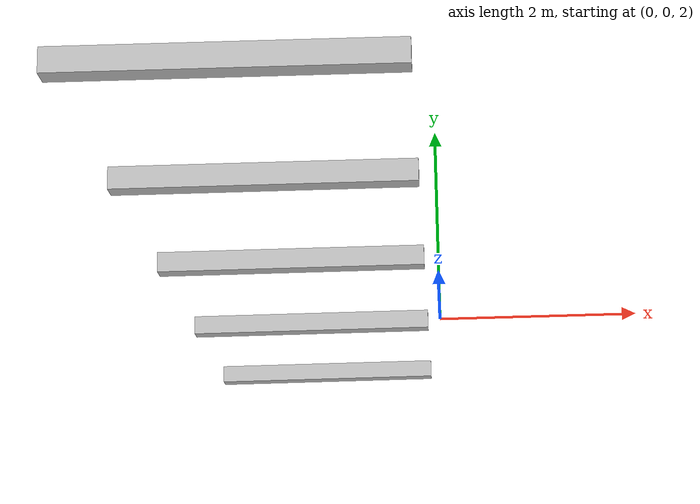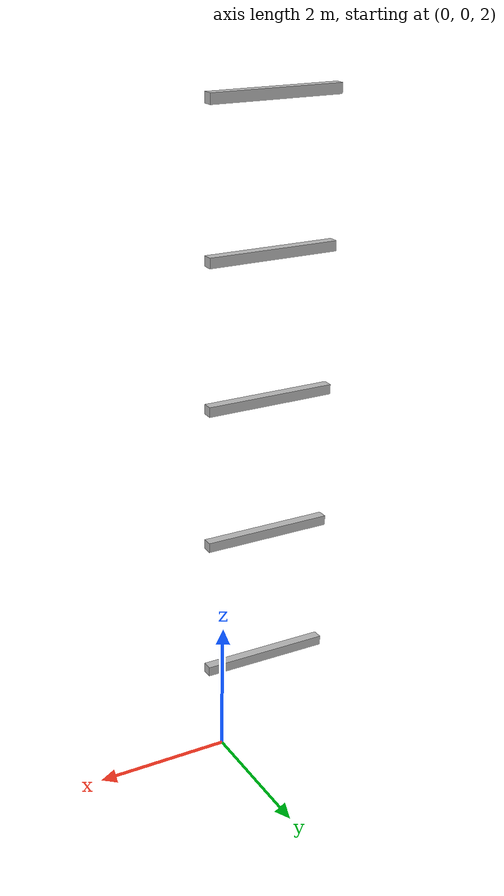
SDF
<sdf version="1.7">
 <world name="default">
  <model name="orthogonal_747_2.000.15_TS">
   <static>1</static>
   <link name="x_link_2_2_2">
    <inertial>
     <mass>1</mass>
     <inertia>
      <ixx>0.166667</ixx>
      <ixy>0</ixy>
      <ixz>0</ixz>
      <iyy>0.166667</iyy>
      <iyz>0</iyz>
      <izz>0.166667</izz>
     </inertia>
    </inertial>
    <pose>5.375 4.3 5.375 0 -0 0</pose>
    <visual name="visual_0">
     <laser_retro>2094</laser_retro>
     <geometry><box><size>2 1e-06 0.15</size></box></geometry>
     <material>
      <script><name>Gazebo/Grey</name><uri>file://media/materials/scripts/gazebo.material</uri></script>
      <shader type="pixel"><normal_map>__default__</normal_map></shader>
      <ambient>0.678 0.498 0.659 1</ambient>
      <diffuse>0.7 0.7 0.7 1</diffuse>
      <specular>0.01 0.01 0.01 1</specular>
      <emissive>0 0 0 1</emissive>
     </material>
     <pose>0 -0.075 0 0 -0 0</pose>
     <transparency>1</transparency>
    </visual>
    <visual name="visual_1">
     <laser_retro>2095</laser_retro>
     <geometry><box><size>2 1e-06 0.15</size></box></geometry>
     <material>
      <script><name>Gazebo/Grey</name><uri>file://media/materials/scripts/gazebo.material</uri></script>
      <shader type="pixel"><normal_map>__default__</normal_map></shader>
      <ambient>0.447 0.624 0.812 1</ambient>
      <diffuse>0.7 0.7 0.7 1</diffuse>
      <specular>0.01 0.01 0.01 1</specular>
      <emissive>0 0 0 1</emissive>
     </material>
     <pose>0 0.075 0 0 -0 0</pose>
     <transparency>1</transparency>
    </visual>
    <visual name="visual_2">
     <laser_retro>2096</laser_retro>
     <geometry><box><size>2 0.15 1e-06</size></box></geometry>
     <material>
      <script><name>Gazebo/Grey</name><uri>file://media/materials/scripts/gazebo.material</uri></script>
      <shader type="pixel"><normal_map>__default__</normal_map></shader>
      <ambient>0.988 0.686 0.243 1</ambient>
      <diffuse>0.7 0.7 0.7 1</diffuse>
      <specular>0.01 0.01 0.01 1</specular>
      <emissive>0 0 0 1</emissive>
     </material>
     <pose>0 0 -0.075 0 -0 0</pose>
     <transparency>1</transparency>
    </visual>
    <visual name="visual_3">
     <laser_retro>2097</laser_retro>
     <geometry><box><size>1e-06 0.15 0.15</size></box></geometry>
     <material>
      <script><name>Gazebo/Grey</name><uri>file://media/materials/scripts/gazebo.material</uri></script>
      <shader type="pixel"><normal_map>__default__</normal_map></shader>
      <ambient>0.988 0.914 0.31 1</ambient>
      <diffuse>0.7 0.7 0.7 1</diffuse>
      <specular>0.01 0.01 0.01 1</specular>
      <emissive>0 0 0 1</emissive>
     </material>
     <pose>1 0 0 0 -0 0</pose>
     <transparency>1</transparency>
    </visual>
    <visual name="visual_4">
     <laser_retro>2098</laser_retro>
     <geometry><box><size>2 0.15 1e-06</size></box></geometry>
     <material>
      <script><name>Gazebo/Grey</name><uri>file://media/materials/scripts/gazebo.material</uri></script>
      <shader type="pixel"><normal_map>__default__</normal_map></shader>
      <ambient>0.937 0.161 0.161 1</ambient>
      <diffuse>0.7 0.7 0.7 1</diffuse>
      <specular>0.01 0.01 0.01 1</specular>
      <emissive>0 0 0 1</emissive>
     </material>
     <pose>0 0 0.075 0 -0 0</pose>
     <transparency>1</transparency>
    </visual>
    <visual name="visual_5">
     <laser_retro>2099</laser_retro>
     <geometry><box><size>1e-06 0.15 0.15</size></box></geometry>
     <material>
      <script><name>Gazebo/Grey</name><uri>file://media/materials/scripts/gazebo.material</uri></script>
      <shader type="pixel"><normal_map>__default__</normal_map></shader>
      <ambient>0.541 0.886 0.204 1</ambient>
      <diffuse>0.7 0.7 0.7 1</diffuse>
      <specular>0.01 0.01 0.01 1</specular>
      <emissive>0 0 0 1</emissive>
     </material>
     <pose>-1 0 0 0 -0 0</pose>
     <transparency>1</transparency>
    </visual>
    <visual name="visual_texture">
     <geometry><box><size>1.9998 0.149985 0.149985</size></box></geometry>
     <material>
      <script>
       <uri>model://BASE_MODELS/simple_block_v2_textured/materials/scripts</uri>
       <uri>model://BASE_MODELS/simple_block_v2_textured/materials/textures</uri>
       <name>metal</name>
      </script>
     </material>
     <laser_retro>2100</laser_retro>
    </visual>
    <collision name="collision">
     <geometry><box><size>2 0.15 0.15</size></box></geometry>
     <surface>
      <friction>
       <ode><mu>1</mu><mu2>1</mu2><fdir1>0 0 0</fdir1><slip1>0</slip1><slip2>0</slip2></ode>
       <torsional>
        <coefficient>1</coefficient>
        <patch_radius>0</patch_radius>
        <surface_radius>0</surface_radius>
        <use_patch_radius>1</use_patch_radius>
        <ode><slip>0</slip></ode>
       </torsional>
      </friction>
      <bounce><restitution_coefficient>0</restitution_coefficient><threshold>1e+06</threshold></bounce>
      <contact>
       <collide_without_contact>0</collide_without_contact>
       <collide_without_contact_bitmask>1</collide_without_contact_bitmask>
       <collide_bitmask>1</collide_bitmask>
       <ode>
        <soft_cfm>0</soft_cfm>
        <soft_erp>0.2</soft_erp>
        <kp>1e+13</kp>
        <kd>1</kd>
        <max_vel>0.01</max_vel>
        <min_depth>0</min_depth>
       </ode>
       <bullet>
        <split_impulse>1</split_impulse>
        <split_impulse_penetration_threshold>-0.01</split_impulse_penetration_threshold>
        <soft_cfm>0</soft_cfm>
        <soft_erp>0.2</soft_erp>
        <kp>1e+13</kp>
        <kd>1</kd>
       </bullet>
      </contact>
     </surface>
    </collision>
   </link>
   <link name="x_link_3_2_2">
    <inertial>
     <mass>1</mass>
     <inertia>
      <ixx>0.166667</ixx>
      <ixy>0</ixy>
      <ixz>0</ixz>
      <iyy>0.166667</iyy>
      <iyz>0</iyz>
      <izz>0.166667</izz>
     </inertia>
    </inertial>
    <pose>5.375 4.3 7.525 0 -0 0</pose>
    <visual name="visual_0">
     <laser_retro>2997</laser_retro>
     <geometry><box><size>2 1e-06 0.15</size></box></geometry>
     <material>
      <script><name>Gazebo/Grey</name><uri>file://media/materials/scripts/gazebo.material</uri></script>
      <shader type="pixel"><normal_map>__default__</normal_map></shader>
      <ambient>0.678 0.498 0.659 1</ambient>
      <diffuse>0.7 0.7 0.7 1</diffuse>
      <specular>0.01 0.01 0.01 1</specular>
      <emissive>0 0 0 1</emissive>
     </material>
     <pose>0 -0.075 0 0 -0 0</pose>
     <transparency>1</transparency>
    </visual>
    <visual name="visual_1">
     <laser_retro>2998</laser_retro>
     <geometry><box><size>2 1e-06 0.15</size></box></geometry>
     <material>
      <script><name>Gazebo/Grey</name><uri>file://media/materials/scripts/gazebo.material</uri></script>
      <shader type="pixel"><normal_map>__default__</normal_map></shader>
      <ambient>0.447 0.624 0.812 1</ambient>
      <diffuse>0.7 0.7 0.7 1</diffuse>
      <specular>0.01 0.01 0.01 1</specular>
      <emissive>0 0 0 1</emissive>
     </material>
     <pose>0 0.075 0 0 -0 0</pose>
     <transparency>1</transparency>
    </visual>
    <visual name="visual_2">
     <laser_retro>2999</laser_retro>
     <geometry><box><size>2 0.15 1e-06</size></box></geometry>
     <material>
      <script><name>Gazebo/Grey</name><uri>file://media/materials/scripts/gazebo.material</uri></script>
      <shader type="pixel"><normal_map>__default__</normal_map></shader>
      <ambient>0.988 0.686 0.243 1</ambient>
      <diffuse>0.7 0.7 0.7 1</diffuse>
      <specular>0.01 0.01 0.01 1</specular>
      <emissive>0 0 0 1</emissive>
     </material>
     <pose>0 0 -0.075 0 -0 0</pose>
     <transparency>1</transparency>
    </visual>
    <visual name="visual_3">
     <laser_retro>3000</laser_retro>
     <geometry><box><size>1e-06 0.15 0.15</size></box></geometry>
     <material>
      <script><name>Gazebo/Grey</name><uri>file://media/materials/scripts/gazebo.material</uri></script>
      <shader type="pixel"><normal_map>__default__</normal_map></shader>
      <ambient>0.988 0.914 0.31 1</ambient>
      <diffuse>0.7 0.7 0.7 1</diffuse>
      <specular>0.01 0.01 0.01 1</specular>
      <emissive>0 0 0 1</emissive>
     </material>
     <pose>1 0 0 0 -0 0</pose>
     <transparency>1</transparency>
    </visual>
    <visual name="visual_4">
     <laser_retro>3001</laser_retro>
     <geometry><box><size>2 0.15 1e-06</size></box></geometry>
     <material>
      <script><name>Gazebo/Grey</name><uri>file://media/materials/scripts/gazebo.material</uri></script>
      <shader type="pixel"><normal_map>__default__</normal_map></shader>
      <ambient>0.937 0.161 0.161 1</ambient>
      <diffuse>0.7 0.7 0.7 1</diffuse>
      <specular>0.01 0.01 0.01 1</specular>
      <emissive>0 0 0 1</emissive>
     </material>
     <pose>0 0 0.075 0 -0 0</pose>
     <transparency>1</transparency>
    </visual>
    <visual name="visual_5">
     <laser_retro>3002</laser_retro>
     <geometry><box><size>1e-06 0.15 0.15</size></box></geometry>
     <material>
      <script><name>Gazebo/Grey</name><uri>file://media/materials/scripts/gazebo.material</uri></script>
      <shader type="pixel"><normal_map>__default__</normal_map></shader>
      <ambient>0.541 0.886 0.204 1</ambient>
      <diffuse>0.7 0.7 0.7 1</diffuse>
      <specular>0.01 0.01 0.01 1</specular>
      <emissive>0 0 0 1</emissive>
     </material>
     <pose>-1 0 0 0 -0 0</pose>
     <transparency>1</transparency>
    </visual>
    <visual name="visual_texture">
     <geometry><box><size>1.9998 0.149985 0.149985</size></box></geometry>
     <material>
      <script>
       <uri>model://BASE_MODELS/simple_block_v2_textured/materials/scripts</uri>
       <uri>model://BASE_MODELS/simple_block_v2_textured/materials/textures</uri>
       <name>metal</name>
      </script>
     </material>
     <laser_retro>3003</laser_retro>
    </visual>
    <collision name="collision">
     <geometry><box><size>2 0.15 0.15</size></box></geometry>
     <surface>
      <friction>
       <ode><mu>1</mu><mu2>1</mu2><fdir1>0 0 0</fdir1><slip1>0</slip1><slip2>0</slip2></ode>
       <torsional>
        <coefficient>1</coefficient>
        <patch_radius>0</patch_radius>
        <surface_radius>0</surface_radius>
        <use_patch_radius>1</use_patch_radius>
        <ode><slip>0</slip></ode>
       </torsional>
      </friction>
      <bounce><restitution_coefficient>0</restitution_coefficient><threshold>1e+06</threshold></bounce>
      <contact>
       <collide_without_contact>0</collide_without_contact>
       <collide_without_contact_bitmask>1</collide_without_contact_bitmask>
       <collide_bitmask>1</collide_bitmask>
       <ode>
        <soft_cfm>0</soft_cfm>
        <soft_erp>0.2</soft_erp>
        <kp>1e+13</kp>
        <kd>1</kd>
        <max_vel>0.01</max_vel>
        <min_depth>0</min_depth>
       </ode>
       <bullet>
        <split_impulse>1</split_impulse>
        <split_impulse_penetration_threshold>-0.01</split_impulse_penetration_threshold>
        <soft_cfm>0</soft_cfm>
        <soft_erp>0.2</soft_erp>
        <kp>1e+13</kp>
        <kd>1</kd>
       </bullet>
      </contact>
     </surface>
    </collision>
   </link>
   <link name="x_link_4_2_2">
    <inertial>
     <mass>1</mass>
     <inertia>
      <ixx>0.166667</ixx>
      <ixy>0</ixy>
      <ixz>0</ixz>
      <iyy>0.166667</iyy>
      <iyz>0</iyz>
      <izz>0.166667</izz>
     </inertia>
    </inertial>
    <pose>5.375 4.3 9.675 0 -0 0</pose>
    <visual name="visual_0">
     <laser_retro>3900</laser_retro>
     <geometry><box><size>2 1e-06 0.15</size></box></geometry>
     <material>
      <script><name>Gazebo/Grey</name><uri>file://media/materials/scripts/gazebo.material</uri></script>
      <shader type="pixel"><normal_map>__default__</normal_map></shader>
      <ambient>0.678 0.498 0.659 1</ambient>
      <diffuse>0.7 0.7 0.7 1</diffuse>
      <specular>0.01 0.01 0.01 1</specular>
      <emissive>0 0 0 1</emissive>
     </material>
     <pose>0 -0.075 0 0 -0 0</pose>
     <transparency>1</transparency>
    </visual>
    <visual name="visual_1">
     <laser_retro>3901</laser_retro>
     <geometry><box><size>2 1e-06 0.15</size></box></geometry>
     <material>
      <script><name>Gazebo/Grey</name><uri>file://media/materials/scripts/gazebo.material</uri></script>
      <shader type="pixel"><normal_map>__default__</normal_map></shader>
      <ambient>0.447 0.624 0.812 1</ambient>
      <diffuse>0.7 0.7 0.7 1</diffuse>
      <specular>0.01 0.01 0.01 1</specular>
      <emissive>0 0 0 1</emissive>
     </material>
     <pose>0 0.075 0 0 -0 0</pose>
     <transparency>1</transparency>
    </visual>
    <visual name="visual_2">
     <laser_retro>3902</laser_retro>
     <geometry><box><size>2 0.15 1e-06</size></box></geometry>
     <material>
      <script><name>Gazebo/Grey</name><uri>file://media/materials/scripts/gazebo.material</uri></script>
      <shader type="pixel"><normal_map>__default__</normal_map></shader>
      <ambient>0.988 0.686 0.243 1</ambient>
      <diffuse>0.7 0.7 0.7 1</diffuse>
      <specular>0.01 0.01 0.01 1</specular>
      <emissive>0 0 0 1</emissive>
     </material>
     <pose>0 0 -0.075 0 -0 0</pose>
     <transparency>1</transparency>
    </visual>
    <visual name="visual_3">
     <laser_retro>3903</laser_retro>
     <geometry><box><size>1e-06 0.15 0.15</size></box></geometry>
     <material>
      <script><name>Gazebo/Grey</name><uri>file://media/materials/scripts/gazebo.material</uri></script>
      <shader type="pixel"><normal_map>__default__</normal_map></shader>
      <ambient>0.988 0.914 0.31 1</ambient>
      <diffuse>0.7 0.7 0.7 1</diffuse>
      <specular>0.01 0.01 0.01 1</specular>
      <emissive>0 0 0 1</emissive>
     </material>
     <pose>1 0 0 0 -0 0</pose>
     <transparency>1</transparency>
    </visual>
    <visual name="visual_4">
     <laser_retro>3904</laser_retro>
     <geometry><box><size>2 0.15 1e-06</size></box></geometry>
     <material>
      <script><name>Gazebo/Grey</name><uri>file://media/materials/scripts/gazebo.material</uri></script>
      <shader type="pixel"><normal_map>__default__</normal_map></shader>
      <ambient>0.937 0.161 0.161 1</ambient>
      <diffuse>0.7 0.7 0.7 1</diffuse>
      <specular>0.01 0.01 0.01 1</specular>
      <emissive>0 0 0 1</emissive>
     </material>
     <pose>0 0 0.075 0 -0 0</pose>
     <transparency>1</transparency>
    </visual>
    <visual name="visual_5">
     <laser_retro>3905</laser_retro>
     <geometry><box><size>1e-06 0.15 0.15</size></box></geometry>
     <material>
      <script><name>Gazebo/Grey</name><uri>file://media/materials/scripts/gazebo.material</uri></script>
      <shader type="pixel"><normal_map>__default__</normal_map></shader>
      <ambient>0.541 0.886 0.204 1</ambient>
      <diffuse>0.7 0.7 0.7 1</diffuse>
      <specular>0.01 0.01 0.01 1</specular>
      <emissive>0 0 0 1</emissive>
     </material>
     <pose>-1 0 0 0 -0 0</pose>
     <transparency>1</transparency>
    </visual>
    <visual name="visual_texture">
     <geometry><box><size>1.9998 0.149985 0.149985</size></box></geometry>
     <material>
      <script>
       <uri>model://BASE_MODELS/simple_block_v2_textured/materials/scripts</uri>
       <uri>model://BASE_MODELS/simple_block_v2_textured/materials/textures</uri>
       <name>metal</name>
      </script>
     </material>
     <laser_retro>3906</laser_retro>
    </visual>
    <collision name="collision">
     <geometry><box><size>2 0.15 0.15</size></box></geometry>
     <surface>
      <friction>
       <ode><mu>1</mu><mu2>1</mu2><fdir1>0 0 0</fdir1><slip1>0</slip1><slip2>0</slip2></ode>
       <torsional>
        <coefficient>1</coefficient>
        <patch_radius>0</patch_radius>
        <surface_radius>0</surface_radius>
        <use_patch_radius>1</use_patch_radius>
        <ode><slip>0</slip></ode>
       </torsional>
      </friction>
      <bounce><restitution_coefficient>0</restitution_coefficient><threshold>1e+06</threshold></bounce>
      <contact>
       <collide_without_contact>0</collide_without_contact>
       <collide_without_contact_bitmask>1</collide_without_contact_bitmask>
       <collide_bitmask>1</collide_bitmask>
       <ode>
        <soft_cfm>0</soft_cfm>
        <soft_erp>0.2</soft_erp>
        <kp>1e+13</kp>
        <kd>1</kd>
        <max_vel>0.01</max_vel>
        <min_depth>0</min_depth>
       </ode>
       <bullet>
        <split_impulse>1</split_impulse>
        <split_impulse_penetration_threshold>-0.01</split_impulse_penetration_threshold>
        <soft_cfm>0</soft_cfm>
        <soft_erp>0.2</soft_erp>
        <kp>1e+13</kp>
        <kd>1</kd>
       </bullet>
      </contact>
     </surface>
    </collision>
   </link>
   <link name="x_link_5_2_2">
    <inertial>
     <mass>1</mass>
     <inertia>
      <ixx>0.166667</ixx>
      <ixy>0</ixy>
      <ixz>0</ixz>
      <iyy>0.166667</iyy>
      <iyz>0</iyz>
      <izz>0.166667</izz>
     </inertia>
    </inertial>
    <pose>5.375 4.3 11.825 0 -0 0</pose>
    <visual name="visual_0">
     <laser_retro>4803</laser_retro>
     <geometry><box><size>2 1e-06 0.15</size></box></geometry>
     <material>
      <script><name>Gazebo/Grey</name><uri>file://media/materials/scripts/gazebo.material</uri></script>
      <shader type="pixel"><normal_map>__default__</normal_map></shader>
      <ambient>0.678 0.498 0.659 1</ambient>
      <diffuse>0.7 0.7 0.7 1</diffuse>
      <specular>0.01 0.01 0.01 1</specular>
      <emissive>0 0 0 1</emissive>
     </material>
     <pose>0 -0.075 0 0 -0 0</pose>
     <transparency>1</transparency>
    </visual>
    <visual name="visual_1">
     <laser_retro>4804</laser_retro>
     <geometry><box><size>2 1e-06 0.15</size></box></geometry>
     <material>
      <script><name>Gazebo/Grey</name><uri>file://media/materials/scripts/gazebo.material</uri></script>
      <shader type="pixel"><normal_map>__default__</normal_map></shader>
      <ambient>0.447 0.624 0.812 1</ambient>
      <diffuse>0.7 0.7 0.7 1</diffuse>
      <specular>0.01 0.01 0.01 1</specular>
      <emissive>0 0 0 1</emissive>
     </material>
     <pose>0 0.075 0 0 -0 0</pose>
     <transparency>1</transparency>
    </visual>
    <visual name="visual_2">
     <laser_retro>4805</laser_retro>
     <geometry><box><size>2 0.15 1e-06</size></box></geometry>
     <material>
      <script><name>Gazebo/Grey</name><uri>file://media/materials/scripts/gazebo.material</uri></script>
      <shader type="pixel"><normal_map>__default__</normal_map></shader>
      <ambient>0.988 0.686 0.243 1</ambient>
      <diffuse>0.7 0.7 0.7 1</diffuse>
      <specular>0.01 0.01 0.01 1</specular>
      <emissive>0 0 0 1</emissive>
     </material>
     <pose>0 0 -0.075 0 -0 0</pose>
     <transparency>1</transparency>
    </visual>
    <visual name="visual_3">
     <laser_retro>4806</laser_retro>
     <geometry><box><size>1e-06 0.15 0.15</size></box></geometry>
     <material>
      <script><name>Gazebo/Grey</name><uri>file://media/materials/scripts/gazebo.material</uri></script>
      <shader type="pixel"><normal_map>__default__</normal_map></shader>
      <ambient>0.988 0.914 0.31 1</ambient>
      <diffuse>0.7 0.7 0.7 1</diffuse>
      <specular>0.01 0.01 0.01 1</specular>
      <emissive>0 0 0 1</emissive>
     </material>
     <pose>1 0 0 0 -0 0</pose>
     <transparency>1</transparency>
    </visual>
    <visual name="visual_4">
     <laser_retro>4807</laser_retro>
     <geometry><box><size>2 0.15 1e-06</size></box></geometry>
     <material>
      <script><name>Gazebo/Grey</name><uri>file://media/materials/scripts/gazebo.material</uri></script>
      <shader type="pixel"><normal_map>__default__</normal_map></shader>
      <ambient>0.937 0.161 0.161 1</ambient>
      <diffuse>0.7 0.7 0.7 1</diffuse>
      <specular>0.01 0.01 0.01 1</specular>
      <emissive>0 0 0 1</emissive>
     </material>
     <pose>0 0 0.075 0 -0 0</pose>
     <transparency>1</transparency>
    </visual>
    <visual name="visual_5">
     <laser_retro>4808</laser_retro>
     <geometry><box><size>1e-06 0.15 0.15</size></box></geometry>
     <material>
      <script><name>Gazebo/Grey</name><uri>file://media/materials/scripts/gazebo.material</uri></script>
      <shader type="pixel"><normal_map>__default__</normal_map></shader>
      <ambient>0.541 0.886 0.204 1</ambient>
      <diffuse>0.7 0.7 0.7 1</diffuse>
      <specular>0.01 0.01 0.01 1</specular>
      <emissive>0 0 0 1</emissive>
     </material>
     <pose>-1 0 0 0 -0 0</pose>
     <transparency>1</transparency>
    </visual>
    <visual name="visual_texture">
     <geometry><box><size>1.9998 0.149985 0.149985</size></box></geometry>
     <material>
      <script>
       <uri>model://BASE_MODELS/simple_block_v2_textured/materials/scripts</uri>
       <uri>model://BASE_MODELS/simple_block_v2_textured/materials/textures</uri>
       <name>metal</name>
      </script>
     </material>
     <laser_retro>4809</laser_retro>
    </visual>
    <collision name="collision">
     <geometry><box><size>2 0.15 0.15</size></box></geometry>
     <surface>
      <friction>
       <ode><mu>1</mu><mu2>1</mu2><fdir1>0 0 0</fdir1><slip1>0</slip1><slip2>0</slip2></ode>
       <torsional>
        <coefficient>1</coefficient>
        <patch_radius>0</patch_radius>
        <surface_radius>0</surface_radius>
        <use_patch_radius>1</use_patch_radius>
        <ode><slip>0</slip></ode>
       </torsional>
      </friction>
      <bounce><restitution_coefficient>0</restitution_coefficient><threshold>1e+06</threshold></bounce>
      <contact>
       <collide_without_contact>0</collide_without_contact>
       <collide_without_contact_bitmask>1</collide_without_contact_bitmask>
       <collide_bitmask>1</collide_bitmask>
       <ode>
        <soft_cfm>0</soft_cfm>
        <soft_erp>0.2</soft_erp>
        <kp>1e+13</kp>
        <kd>1</kd>
        <max_vel>0.01</max_vel>
        <min_depth>0</min_depth>
       </ode>
       <bullet>
        <split_impulse>1</split_impulse>
        <split_impulse_penetration_threshold>-0.01</split_impulse_penetration_threshold>
        <soft_cfm>0</soft_cfm>
        <soft_erp>0.2</soft_erp>
        <kp>1e+13</kp>
        <kd>1</kd>
       </bullet>
      </contact>
     </surface>
    </collision>
   </link>
   <link name="x_link_6_2_2">
    <inertial>
     <mass>1</mass>
     <inertia>
      <ixx>0.166667</ixx>
      <ixy>0</ixy>
      <ixz>0</ixz>
      <iyy>0.166667</iyy>
      <iyz>0</iyz>
      <izz>0.166667</izz>
     </inertia>
    </inertial>
    <pose>5.375 4.3 13.975 0 -0 0</pose>
    <visual name="visual_0">
     <laser_retro>5755</laser_retro>
     <geometry><box><size>2 1e-06 0.15</size></box></geometry>
     <material>
      <script><name>Gazebo/Grey</name><uri>file://media/materials/scripts/gazebo.material</uri></script>
      <shader type="pixel"><normal_map>__default__</normal_map></shader>
      <ambient>0.678 0.498 0.659 1</ambient>
      <diffuse>0.7 0.7 0.7 1</diffuse>
      <specular>0.01 0.01 0.01 1</specular>
      <emissive>0 0 0 1</emissive>
     </material>
     <pose>0 -0.075 0 0 -0 0</pose>
     <transparency>1</transparency>
    </visual>
    <visual name="visual_1">
     <laser_retro>5756</laser_retro>
     <geometry><box><size>2 1e-06 0.15</size></box></geometry>
     <material>
      <script><name>Gazebo/Grey</name><uri>file://media/materials/scripts/gazebo.material</uri></script>
      <shader type="pixel"><normal_map>__default__</normal_map></shader>
      <ambient>0.447 0.624 0.812 1</ambient>
      <diffuse>0.7 0.7 0.7 1</diffuse>
      <specular>0.01 0.01 0.01 1</specular>
      <emissive>0 0 0 1</emissive>
     </material>
     <pose>0 0.075 0 0 -0 0</pose>
     <transparency>1</transparency>
    </visual>
    <visual name="visual_2">
     <laser_retro>5757</laser_retro>
     <geometry><box><size>2 0.15 1e-06</size></box></geometry>
     <material>
      <script><name>Gazebo/Grey</name><uri>file://media/materials/scripts/gazebo.material</uri></script>
      <shader type="pixel"><normal_map>__default__</normal_map></shader>
      <ambient>0.988 0.686 0.243 1</ambient>
      <diffuse>0.7 0.7 0.7 1</diffuse>
      <specular>0.01 0.01 0.01 1</specular>
      <emissive>0 0 0 1</emissive>
     </material>
     <pose>0 0 -0.075 0 -0 0</pose>
     <transparency>1</transparency>
    </visual>
    <visual name="visual_3">
     <laser_retro>5758</laser_retro>
     <geometry><box><size>1e-06 0.15 0.15</size></box></geometry>
     <material>
      <script><name>Gazebo/Grey</name><uri>file://media/materials/scripts/gazebo.material</uri></script>
      <shader type="pixel"><normal_map>__default__</normal_map></shader>
      <ambient>0.988 0.914 0.31 1</ambient>
      <diffuse>0.7 0.7 0.7 1</diffuse>
      <specular>0.01 0.01 0.01 1</specular>
      <emissive>0 0 0 1</emissive>
     </material>
     <pose>1 0 0 0 -0 0</pose>
     <transparency>1</transparency>
    </visual>
    <visual name="visual_4">
     <laser_retro>5759</laser_retro>
     <geometry><box><size>2 0.15 1e-06</size></box></geometry>
     <material>
      <script><name>Gazebo/Grey</name><uri>file://media/materials/scripts/gazebo.material</uri></script>
      <shader type="pixel"><normal_map>__default__</normal_map></shader>
      <ambient>0.937 0.161 0.161 1</ambient>
      <diffuse>0.7 0.7 0.7 1</diffuse>
      <specular>0.01 0.01 0.01 1</specular>
      <emissive>0 0 0 1</emissive>
     </material>
     <pose>0 0 0.075 0 -0 0</pose>
     <transparency>1</transparency>
    </visual>
    <visual name="visual_5">
     <laser_retro>5760</laser_retro>
     <geometry><box><size>1e-06 0.15 0.15</size></box></geometry>
     <material>
      <script><name>Gazebo/Grey</name><uri>file://media/materials/scripts/gazebo.material</uri></script>
      <shader type="pixel"><normal_map>__default__</normal_map></shader>
      <ambient>0.541 0.886 0.204 1</ambient>
      <diffuse>0.7 0.7 0.7 1</diffuse>
      <specular>0.01 0.01 0.01 1</specular>
      <emissive>0 0 0 1</emissive>
     </material>
     <pose>-1 0 0 0 -0 0</pose>
     <transparency>1</transparency>
    </visual>
    <visual name="visual_texture">
     <geometry><box><size>1.9998 0.149985 0.149985</size></box></geometry>
     <material>
      <script>
       <uri>model://BASE_MODELS/simple_block_v2_textured/materials/scripts</uri>
       <uri>model://BASE_MODELS/simple_block_v2_textured/materials/textures</uri>
       <name>metal</name>
      </script>
     </material>
     <laser_retro>5761</laser_retro>
    </visual>
    <collision name="collision">
     <geometry><box><size>2 0.15 0.15</size></box></geometry>
     <surface>
      <friction>
       <ode><mu>1</mu><mu2>1</mu2><fdir1>0 0 0</fdir1><slip1>0</slip1><slip2>0</slip2></ode>
       <torsional>
        <coefficient>1</coefficient>
        <patch_radius>0</patch_radius>
        <surface_radius>0</surface_radius>
        <use_patch_radius>1</use_patch_radius>
        <ode><slip>0</slip></ode>
       </torsional>
      </friction>
      <bounce><restitution_coefficient>0</restitution_coefficient><threshold>1e+06</threshold></bounce>
      <contact>
       <collide_without_contact>0</collide_without_contact>
       <collide_without_contact_bitmask>1</collide_without_contact_bitmask>
       <collide_bitmask>1</collide_bitmask>
       <ode>
        <soft_cfm>0</soft_cfm>
        <soft_erp>0.2</soft_erp>
        <kp>1e+13</kp>
        <kd>1</kd>
        <max_vel>0.01</max_vel>
        <min_depth>0</min_depth>
       </ode>
       <bullet>
        <split_impulse>1</split_impulse>
        <split_impulse_penetration_threshold>-0.01</split_impulse_penetration_threshold>
        <soft_cfm>0</soft_cfm>
        <soft_erp>0.2</soft_erp>
        <kp>1e+13</kp>
        <kd>1</kd>
       </bullet>
      </contact>
     </surface>
    </collision>
   </link>
   <pose>-6.47624 -5 -2.5 0 -0 0</pose>
  </model>
 </world>
</sdf>
